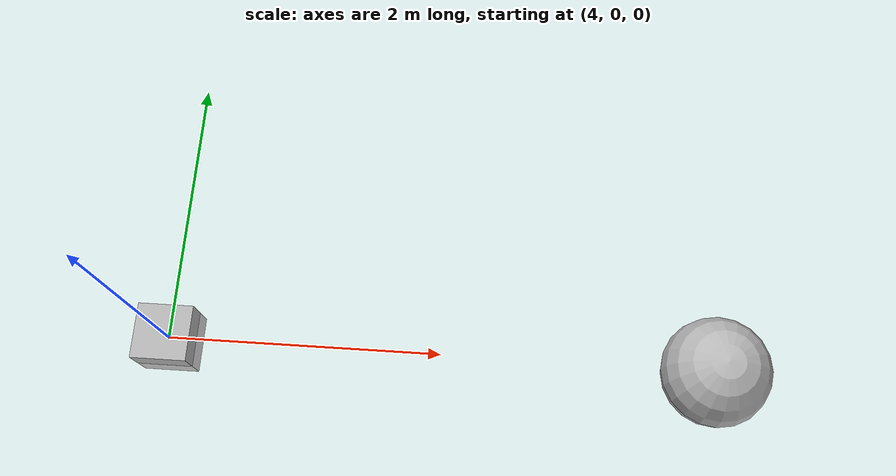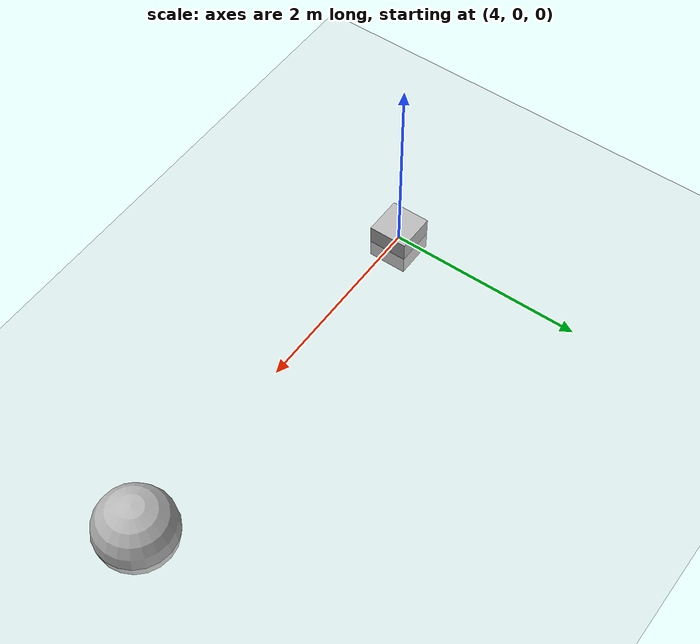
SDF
<?xml version="1.0"?>
<sdf version="1.6">
<world name="vehicle_world">

<!-- Sun -->
<include>
  <uri>model://sun</uri>
</include>

<!-- Ground Plane -->
<include>
  <uri>model://ground_plane</uri>
</include>

<!-- Goal -->
<include>
  <pose>4 0 0 0 0 0</pose>
  <uri>model://goal</uri>
</include>

<!-- Heicub, currently manually spawned-->

<!-- Obstacle -->
<include>
  <pose>2 0 0 0 0 0</pose>
  <uri>model://obstacle</uri>
</include>

</world>
</sdf>

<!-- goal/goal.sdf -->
<sdf version="1.6">

<!-- Goal. -->
<model name="goal">
  <link name="goal">
    <pose>4 0 0 0 0 0</pose>

    <collision name="goal_collision">
      <geometry>
        <sphere>
          <radius>0.4</radius>
        </sphere>
      </geometry>
    </collision>

    <visual name="visual">
      <geometry>
        <sphere>
          <radius>0.4</radius>
        </sphere>
      </geometry>
      <material>
        <script>
          <uri>model://goal/materials/scripts</uri>
          <uri>model://goal/materials/textures</uri>
          <name>vehicle/goal</name>
        </script>
      </material>
    </visual>
  </link>
</model>
</sdf>

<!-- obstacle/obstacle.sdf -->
<sdf version="1.6">

<!-- Obstacle -->
<model name="obstacle">
  <link name="obstacle">
    <pose>2 0 0 0 0 0</pose>

    <collision name="collision">
      <geometry>
        <box>
          <size>0.4 0.4 0.4</size>
        </box>
      </geometry>
    </collision>

    <visual name="visual">
      <geometry>
        <box>
          <size>0.4 0.4 0.4</size>
        </box>
      </geometry>
      <material>
        <script>
          <uri>model://obstacle/materials/scripts</uri>
          <uri>model://obstacle/materials/textures</uri>
          <name>vehicle/obstacle</name>
        </script>
      </material>
    </visual>
  </link>
</model>
</sdf>
